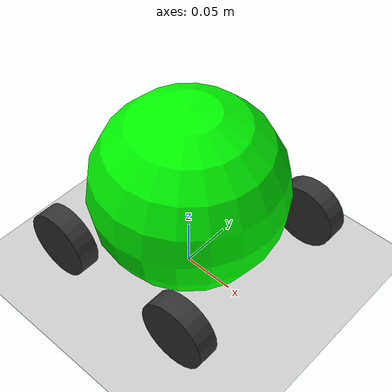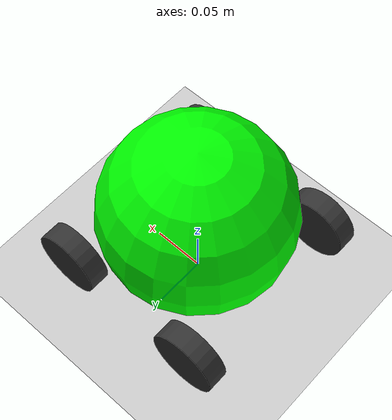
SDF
<?xml version="1.0" ?>
<sdf version="1.6">
  <world name="free_world">

    <physics name="1ms" type="ignored">
      <max_step_size>0.01</max_step_size>
      <real_time_factor>1.0</real_time_factor>
    </physics>
    <scene>

      <grid>false</grid>
      <origin_visual>false</origin_visual>
    </scene>

    <plugin
      filename="ignition-gazebo-physics-system"
      name="ignition::gazebo::systems::Physics">
    </plugin>
    <plugin
      filename="ignition-gazebo-user-commands-system"
      name="ignition::gazebo::systems::UserCommands">
    </plugin>
    <plugin
      filename="ignition-gazebo-scene-broadcaster-system"
      name="ignition::gazebo::systems::SceneBroadcaster">
    </plugin>

    <gui fullscreen='0'>
            <plugin name='3D View' filename='GzScene3D'>
                <ignition-gui>
                    <title>3D View</title>
                    <property type='bool' key='showTitleBar'>0</property>
                    <property type='string' key='state'>docked</property>
                </ignition-gui>
                <engine>ogre2</engine>
                <scene>scene</scene>

                <ambient_light>0.4 0.4 0.4</ambient_light>
                <background_color>0.8 0.8 0.8</background_color>
                <camera_pose>-6 0 6 0 0.5 0</camera_pose>
            </plugin>
            <plugin name='World stats' filename='WorldStats'>
                <ignition-gui>
                    <title>World stats</title>
                    <property type='bool' key='showTitleBar'>0</property>
                    <property type='bool' key='resizable'>0</property>
                    <property type='double' key='height'>110</property>
                    <property type='double' key='width'>290</property>
                    <property type='double' key='z'>1</property>
                    <property type='string' key='state'>floating</property>
                    <anchors target='3D View'>
                        <line own='right' target='right'/>
                        <line own='bottom' target='bottom'/>
                    </anchors>
                </ignition-gui>
                <sim_time>1</sim_time>
                <real_time>1</real_time>
                <real_time_factor>1</real_time_factor>
                <iterations>1</iterations>
            </plugin>
            <plugin name='Transform control' filename='TransformControl'>
                <ignition-gui>
                    <title>Transform control</title>
                    <anchors target='3D View'>
                        <line own='left' target='left'/>
                        <line own='top' target='top'/>
                    </anchors>
                    <property key='resizable' type='bool'>0</property>
                    <property key='width' type='double'>300</property>
                    <property key='height' type='double'>50</property>
                    <property key='state' type='string'>floating</property>
                    <property key='showTitleBar' type='bool'>0</property>
                    <property key='cardBackground' type='string'>#666666</property>
                </ignition-gui>
            </plugin>
    </gui>

    <light type="directional" name="sun">
      <cast_shadows>true</cast_shadows>
      <pose>0 0 10 0 0 0</pose>
      <diffuse>1 1 1 1</diffuse>
      <specular>0.5 0.5 0.5 1</specular>
      <attenuation>
        <range>1000</range>
        <constant>0.9</constant>
        <linear>0.01</linear>
        <quadratic>0.001</quadratic>
      </attenuation>
      <direction>-0.5 0.1 -0.9</direction>
        <camera_pose>3 2 2 0 0 0</camera_pose>
    </light>

    <model name="ground_plane">
      <static>true</static>

    <link name="link">
        <collision name="collision">
          <geometry>
            <plane>
              <normal>0 0 1</normal>
              <size>100 100</size>
            </plane>
          </geometry>
        </collision>
        <visual name="visual">
          <geometry>
            <plane>
              <normal>0 0 1</normal>
              <size>10 10</size>
            </plane>
          </geometry>
          <material>
            <ambient>0.8 0.8 0.8 1</ambient>
            <diffuse>0.8 0.8 0.8 1</diffuse>
            <pbr>
                <metal>
                  <albedo_map>level_two.png</albedo_map>
                  <normal_map>level_two.png</normal_map>
                </metal>
              </pbr>
          </material>
        </visual>
      </link>
    </model>

    <model name='simple_robot'>
    <!--     BODY PARTS        -->
        <link name='chassis'>
            <pose>0 0 .1 0 0 0</pose>
            <inertial>
              <mass>3</mass>
              <inertia>
                <ixx>0.005</ixx>
                <ixy>0</ixy>
                <ixz>0</ixz>
                <iyy>0.005</iyy>
                <iyz>0</iyz>
                <izz>0.005</izz>
              </inertia>
            </inertial>
            <visual name='visual'>
              <geometry>
                <sphere>
                    <radius>0.09</radius>
                </sphere>
              </geometry>
              <material>
                <ambient>0 1.0 0 1</ambient>
                <diffuse>0 1.0 0 1</diffuse>
                <specular>0.0 1.0 0.0 1</specular>
                <pbr>
                    <metal>
                        <albedo_map>eye.png</albedo_map>
                        <normal_map>eye.png</normal_map>
                    </metal>
              </pbr>
              </material>
            </visual>
            <collision name='collision'>
              <geometry>
                <sphere>
                    <radius>0.09</radius>
                </sphere>
              </geometry>
            </collision>
          </link>

    <!--        Wheel section   -->

      <link name='rear_left_wheel'>
        <pose>-0.07 0.088 0.05 0 1.5707 1.5707</pose>
      <inertial>
        <mass>0.408233</mass>
        <inertia>
          <ixx>0.03</ixx>
          <iyy>0.03</iyy>
          <izz>0.03</izz>
          <ixy>0</ixy>
          <ixz>0</ixz>
          <iyz>0</iyz>
        </inertia>
      </inertial>
        <visual name='visual'>
          <geometry>
            <cylinder>
              <radius>0.0325</radius>
              <length>.02</length>
            </cylinder>
          </geometry>
          <material>
            <ambient>0.2 0.2 0.2 1</ambient>
            <diffuse>0.2 0.2 0.2 1</diffuse>
            <specular>0.2 0.2 0.2 1</specular>

          </material>
        </visual>
        <collision name='collision'>
          <geometry>
            <cylinder>
              <radius>0.0325</radius>
              <length>.02</length>
            </cylinder>
          </geometry>
        <surface>
          <friction>
            <dynamic_friction>1.0</dynamic_friction>
            <ode>
              <mu>1.0</mu>
              <mu2>1</mu2>
              <fdir1>1 1 0</fdir1>
              <slip1>0.1</slip1>
              <slip2>0.1</slip2>
            </ode>
          </friction>
          <contact>
            <ode>
              <min_depth>0.005</min_depth>
              <kp>1e7</kp>
            </ode>
          </contact>
        </surface>
        </collision>
      </link>

      <link name='rear_right_wheel'>
        <pose> -0.07 -0.088 0.05 0 1.5707 1.5707 </pose>
      <inertial>
        <mass>0.408233</mass>
        <inertia>
          <ixx>0.03</ixx>
          <iyy>0.03</iyy>
          <izz>0.03</izz>
          <ixy>0</ixy>
          <ixz>0</ixz>
          <iyz>0</iyz>
        </inertia>
      </inertial>
        <visual name='visual'>
          <geometry>
            <cylinder>
              <radius>0.0325</radius>
              <length>.02</length>
            </cylinder>
          </geometry>
          <material>
            <ambient>0.2 0.2 0.2 1</ambient>
            <diffuse>0.2 0.2 0.2 1</diffuse>
            <specular>0.2 0.2 0.2 1</specular>

          </material>
        </visual>
        <collision name='collision'>
          <geometry>
            <cylinder>
              <radius>0.0325</radius>
              <length>.02</length>
            </cylinder>
          </geometry>
        <surface>
          <friction>
            <dynamic_friction>1.0</dynamic_friction>
            <ode>
              <mu>1.0</mu>
              <mu2>1.0</mu2>
              <fdir1>1 1 0</fdir1>
              <slip1>0.1</slip1>
              <slip2>0.1</slip2>
            </ode>
          </friction>
          <contact>
            <ode>
              <min_depth>0.005</min_depth>
              <kp>1e7</kp>
            </ode>
          </contact>
        </surface>
        </collision>
      </link>

      <link name='front_left_wheel'>
        <pose>0.07 0.088 0.05 0 1.5707 1.5707</pose>
      <inertial>
        <mass>0.408233</mass>
        <inertia>
          <ixx>0.03</ixx>
          <iyy>0.03</iyy>
          <izz>0.03</izz>
          <ixy>0</ixy>
          <ixz>0</ixz>
          <iyz>0</iyz>
        </inertia>
      </inertial>
        <visual name='visual'>
          <geometry>
            <cylinder>
              <radius>0.0325</radius>
              <length>.02</length>
            </cylinder>
          </geometry>
          <material>
            <ambient>0.2 0.2 0.2 1</ambient>
            <diffuse>0.2 0.2 0.2 1</diffuse>
            <specular>0.2 0.2 0.2 1</specular>

          </material>
        </visual>
        <collision name='collision'>
          <geometry>
            <cylinder>
              <radius>0.0325</radius>
              <length>.02</length>
            </cylinder>
          </geometry>
        <surface>
          <friction>
            <dynamic_friction>1.0</dynamic_friction>
            <ode>
              <mu>1.0</mu>
              <mu2>1.0</mu2>
              <fdir1>1 1 0</fdir1>
              <slip1>0.1</slip1>
              <slip2>0.1</slip2>
            </ode>
          </friction>
          <contact>
            <ode>
              <min_depth>0.005</min_depth>
              <kp>1e7</kp>
            </ode>
          </contact>
        </surface>
        </collision>
      </link>

      <link name='front_right_wheel'>
        <pose>0.07 -0.088 0.05 0 1.5707 1.5707</pose>
      <inertial>
        <mass>0.408233</mass>
        <inertia>
          <ixx>0.03</ixx>
          <iyy>0.03</iyy>
          <izz>0.03</izz>
          <ixy>0</ixy>
          <ixz>0</ixz>
          <iyz>0</iyz>
        </inertia>
      </inertial>
        <visual name='visual'>
          <geometry>
             <cylinder>
              <radius>0.0325</radius>
              <length>.02</length>
            </cylinder>
          </geometry>
          <material>
            <ambient>0.2 0.2 0.2 1</ambient>
            <diffuse>0.2 0.2 0.2 1</diffuse>
            <specular>0.2 0.2 0.2 1</specular>

          </material>
        </visual>
        <collision name='collision'>
          <geometry>
            <cylinder>
              <radius>0.0325</radius>
              <length>.02</length>
            </cylinder>
          </geometry>
        <surface>
          <friction>
            <dynamic_friction>1.0</dynamic_friction>
            <ode>
              <mu>1.0</mu>
              <mu2>1.0</mu2>
              <fdir1>1 1 0</fdir1>
              <slip1>0.1</slip1>
              <slip2>0.1</slip2>
            </ode>
          </friction>
          <contact>
            <ode>
              <min_depth>0.005</min_depth>
              <kp>1e7</kp>
            </ode>
          </contact>
        </surface>
        </collision>
      </link>

    <!--        Joint section        -->

    <joint name='rear_left_wheel_joint' type='revolute'>
        <parent>chassis</parent>
        <child>rear_left_wheel</child>
        <axis>
          <xyz>0 1 0</xyz>
        <limit>
            <lower>-1.79769e+308</lower>    <!--negative infinity-->
            <upper>1.79769e+308</upper>     <!--positive infinity-->
        </limit>
        <dynamics>
          <damping>1</damping>
          <friction>1</friction>
          <spring_reference>0</spring_reference>
          <spring_stiffness>0</spring_stiffness>
        </dynamics>
        <use_parent_model_frame>1</use_parent_model_frame>
        </axis>
      <physics>
        <ode>
          <implicit_spring_damper>1</implicit_spring_damper>
          <cfm_damping>1</cfm_damping>
          <limit>
            <cfm>0</cfm>
            <erp>0.2</erp>
          </limit>
        </ode>
      </physics>
      </joint>
      <!--      M2 topic-->
    <plugin
          filename="ignition-gazebo-joint-position-controller-system"
          name="ignition::gazebo::systems::JointPositionController">
          <joint_name>rear_left_wheel_joint</joint_name>
                <topic>M2</topic>
    </plugin>

    <joint name='rear_right_wheel_joint' type='revolute'>
        <parent>chassis</parent>
        <child>rear_right_wheel</child>
        <axis>
          <xyz>0 1 0</xyz>
        <limit>
            <lower>-1.79769e+308</lower>    <!--negative infinity-->
            <upper>1.79769e+308</upper>     <!--positive infinity-->
        </limit>
        <dynamics>
          <damping>1</damping>
          <friction>1</friction>
          <spring_reference>0</spring_reference>
          <spring_stiffness>0</spring_stiffness>
        </dynamics>
        <use_parent_model_frame>1</use_parent_model_frame>
        </axis>
      <physics>
        <ode>
          <implicit_spring_damper>1</implicit_spring_damper>
          <cfm_damping>1</cfm_damping>
          <limit>
            <cfm>0</cfm>
            <erp>0.2</erp>
          </limit>
        </ode>
      </physics>
      </joint>
      <!--      M3 topic-->
    <plugin
          filename="ignition-gazebo-joint-position-controller-system"
          name="ignition::gazebo::systems::JointPositionController">
          <joint_name>rear_right_wheel_joint</joint_name>
                <topic>M3</topic>
    </plugin>

    <joint name='front_left_wheel_joint' type='revolute'>
        <parent>chassis</parent>
        <child>front_left_wheel</child>
        <axis>
          <xyz>0 1 0</xyz>
        <limit>
            <lower>-1.79769e+308</lower>    <!--negative infinity-->
            <upper>1.79769e+308</upper>     <!--positive infinity-->
        </limit>
        <dynamics>
          <damping>1</damping>
          <friction>1</friction>
          <spring_reference>0</spring_reference>
          <spring_stiffness>0</spring_stiffness>
        </dynamics>
        <use_parent_model_frame>1</use_parent_model_frame>
        </axis>
      <physics>
        <ode>
          <implicit_spring_damper>1</implicit_spring_damper>
          <cfm_damping>1</cfm_damping>
          <limit>
            <cfm>0</cfm>
            <erp>0.2</erp>
          </limit>
        </ode>
      </physics>
      </joint>
      <!--      M0 topic-->
    <plugin
          filename="ignition-gazebo-joint-position-controller-system"
          name="ignition::gazebo::systems::JointPositionController">
          <joint_name>front_left_wheel_joint</joint_name>
                <topic>M0</topic>
    </plugin>

    <joint name='front_right_wheel_joint' type='revolute'>
        <parent>chassis</parent>
        <child>front_right_wheel</child>
        <axis>
          <xyz>0 1 0</xyz>
        <limit>
            <lower>-1.79769e+308</lower>    <!--negative infinity-->
            <upper>1.79769e+308</upper>     <!--positive infinity-->
        </limit>
        <dynamics>
          <damping>1</damping>
          <friction>1</friction>
          <spring_reference>0</spring_reference>
          <spring_stiffness>0</spring_stiffness>
        </dynamics>
        <use_parent_model_frame>1</use_parent_model_frame>
        </axis>
      <physics>
        <ode>
          <implicit_spring_damper>1</implicit_spring_damper>
          <cfm_damping>1</cfm_damping>
          <limit>
            <cfm>0</cfm>
            <erp>0.2</erp>
          </limit>
        </ode>
      </physics>
      </joint>
      <!--      M1 topic-->
    <plugin
          filename="ignition-gazebo-joint-position-controller-system"
          name="ignition::gazebo::systems::JointPositionController">
          <joint_name>front_right_wheel_joint</joint_name>
                <topic>M1</topic>
    </plugin>

  </model>

  </world>
</sdf>
